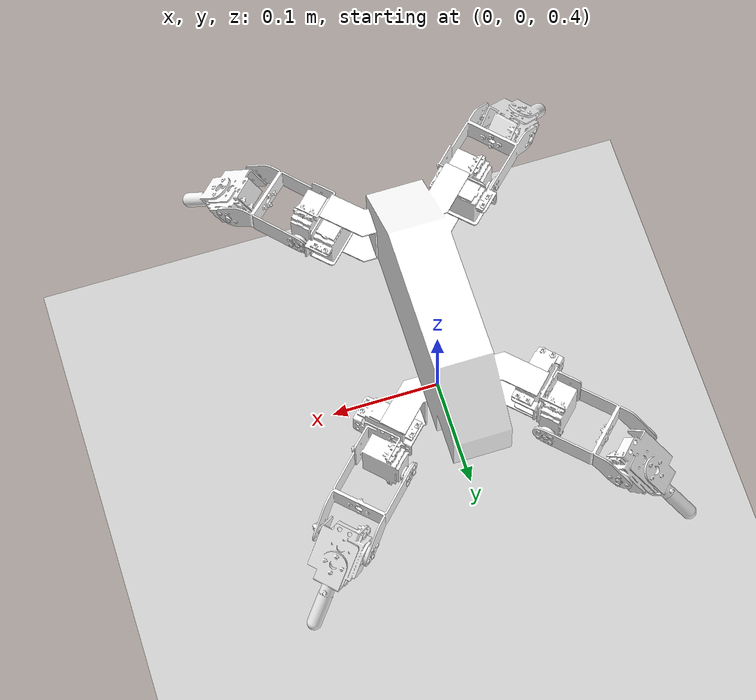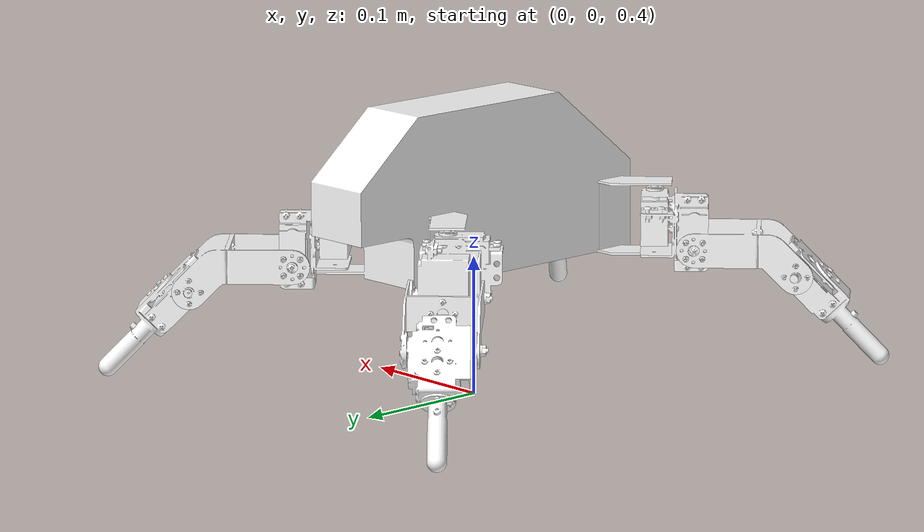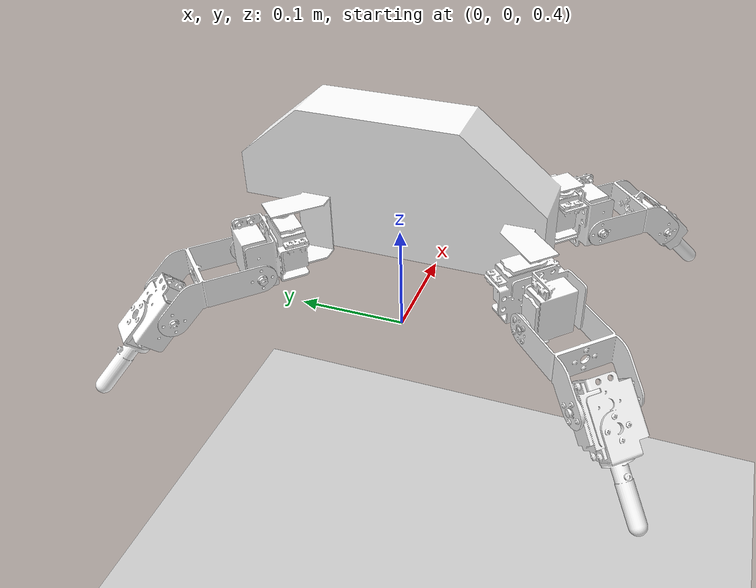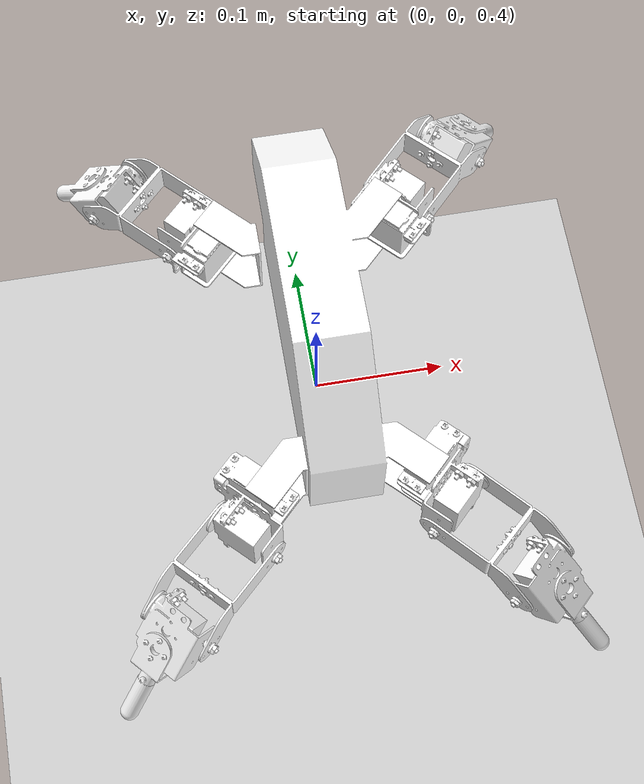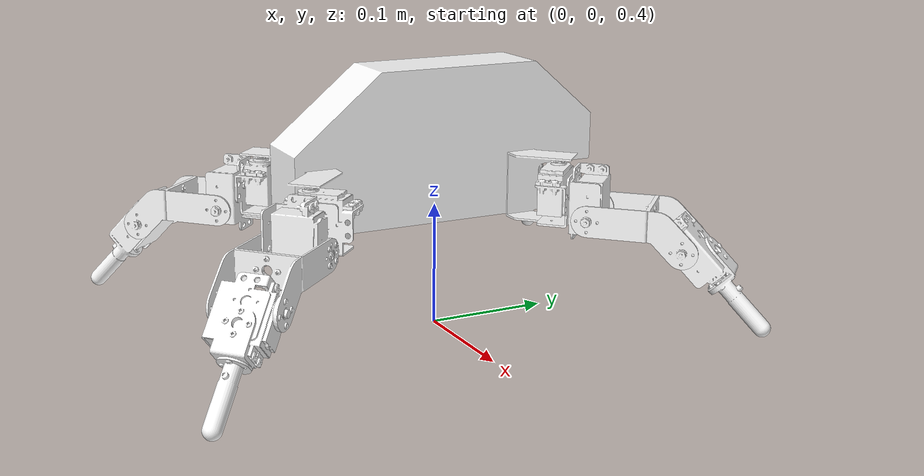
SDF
<sdf version="1.8">
 <world name="friction_world">
  <physics name="1ms" type="ignored">
   <max_step_size>0.001</max_step_size>
   <real_time_factor>1.0</real_time_factor>
  </physics>
  <plugin filename="gz-sim-physics-system" name="gz::sim::systems::Physics"/>
  <plugin filename="gz-sim-sensors-system" name="gz::sim::systems::Sensors">
   <render_engine>ogre2</render_engine>
  </plugin>
  <plugin filename="gz-sim-user-commands-system" name="gz::sim::systems::UserCommands"/>
  <plugin filename="gz-sim-scene-broadcaster-system" name="gz::sim::systems::SceneBroadcaster"/>
  <light type="directional" name="sun">
   <pose>0 0 10 0 0 0</pose>
   <diffuse>0.8 0.8 0.8 1</diffuse>
   <specular>0.2 0.2 0.2 1</specular>
   <direction>-0.5 0.1 -0.9</direction>
  </light>
  <model name="ground_plane">
   <static>true</static>
   <link name="link">
    <collision name="collision">
     <geometry><plane><normal>0 0 1</normal><size>100 100</size></plane></geometry>
     <surface><friction><ode><mu>0.7</mu><mu2>0.7</mu2></ode></friction></surface>
    </collision>
    <visual name="visual">
     <geometry><plane><normal>0 0 1</normal><size>100 100</size></plane></geometry>
     <material><ambient>0.8 0.8 0.8 1</ambient><diffuse>0.8 0.8 0.8 1</diffuse></material>
    </visual>
   </link>
  </model>
  <include>
   <uri>model://THex_Quadruped</uri>
   <name>THex_Quadruped</name>
   <pose>0 0 0.5 0 0 0</pose>
   <plugin filename="gz-sim-joint-state-publisher-system" name="gz::sim::systems::JointStatePublisher"/>
  </include>
 </world>
</sdf>

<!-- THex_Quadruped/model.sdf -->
<sdf version='1.11'>
  <model name='THex_Quadruped'>
  <self_collide>true</self_collide>
    <link name='base_link'>
      <inertial>
        <pose>0.00018 -0.00861 0.03579 0 0 0</pose>
        <mass>0.30423</mass>
        <inertia>
          <ixx>0.00232</ixx>
          <ixy>0</ixy>
          <ixz>0</ixz>
          <iyy>0.00064</iyy>
          <iyz>0.00008</iyz>
          <izz>0.00225</izz>
        </inertia>
      </inertial>
      <collision name='base_link_collision'>
        <pose>0 0 0 0 0 0</pose>
        <geometry>
          <mesh>
            <scale>1 1 1</scale>
            <uri>model://THex_Quadruped/meshes/base_link_collision.STL</uri>
          </mesh>
        </geometry>
      </collision>
      <visual name='base_link_visual'>
        <pose>0 0 0 0 0 0</pose>
        <geometry>
          <mesh>
            <scale>1 1 1</scale>
            <uri>model://THex_Quadruped/meshes/base_link.STL</uri>
          </mesh>
        </geometry>
        <material>
          <diffuse>1 1 1 1</diffuse>
          <ambient>1 1 1 1</ambient>
        </material>
      </visual>
    </link>
    <joint name='bl_hip_joint' type='revolute'>
      <pose relative_to='base_link'>-0.053156000000000002 -0.12709000000000001 0 0 0 -2.3570000000000002</pose>
      <parent>base_link</parent>
      <child>bl_hip</child>
      <axis>
        <xyz>0 0 1</xyz>
        <limit>
          <lower>-0.7853</lower>
          <upper>0.7853</upper>
          <effort>0.9414</effort>
          <velocity>5.23</velocity>
        </limit>
        <dynamics>
          <spring_reference>0</spring_reference>
          <spring_stiffness>0</spring_stiffness>
        </dynamics>
      </axis>
      <physics>
        <provide_feedback>true</provide_feedback>
      </physics>
      <sensor name="force_torque_sensor" type="force_torque">
        <update_rate>100</update_rate>
        <always_on>true</always_on>
        <visualize>true</visualize>
        <topic>bl_hip_force_torque</topic>
        <force_torque>
          <frame>sensor</frame>
          <measure_direction>parent_to_child</measure_direction>
        </force_torque>
      </sensor>
    </joint>
    <link name='bl_hip'>
      <pose relative_to='bl_hip_joint'>0 0 0 0 0 0</pose>
      <inertial>
        <pose>0.01464 -0.00468 0.01291 0 0 0</pose>
        <mass>0.14763</mass>
        <inertia>
          <ixx>0.00005</ixx>
          <ixy>0.00001</ixy>
          <ixz>-0.00001</ixz>
          <iyy>0.00005</iyy>
          <iyz>0</iyz>
          <izz>0.00006</izz>
        </inertia>
      </inertial>
      <collision name='bl_hip_collision'>
        <pose>0 0 0 0 0 0</pose>
        <geometry>
          <mesh>
            <scale>1 1 1</scale>
            <uri>model://THex_Quadruped/meshes/bl_hip_collision.STL</uri>
          </mesh>
        </geometry>
      </collision>
      <visual name='bl_hip_visual'>
        <pose>0 0 0 0 0 0</pose>
        <geometry>
          <mesh>
            <scale>1 1 1</scale>
            <uri>model://THex_Quadruped/meshes/bl_hip.STL</uri>
          </mesh>
        </geometry>
        <material>
          <diffuse>1 1 1 1</diffuse>
          <ambient>1 1 1 1</ambient>
        </material>
      </visual>
    </link>
    <joint name='bl_knee_joint' type='revolute'>
      <pose relative_to='bl_hip'>0.028468 0 0 -1.5707 0 -0.071951000000000015</pose>
      <parent>bl_hip</parent>
      <child>bl_knee</child>
      <axis>
        <xyz>0 0 1</xyz>
        <limit>
          <lower>-1.5707</lower>
          <upper>1.5707</upper>
          <effort>0.9414</effort>
          <velocity>5.23</velocity>
        </limit>
        <dynamics>
          <spring_reference>0</spring_reference>
          <spring_stiffness>0</spring_stiffness>
        </dynamics>
      </axis>
      <physics>
        <provide_feedback>true</provide_feedback>
      </physics>
      <sensor name="force_torque_sensor" type="force_torque">
        <update_rate>100</update_rate>
        <always_on>true</always_on>
        <visualize>true</visualize>
        <topic>bl_knee_force_torque</topic>
        <force_torque>
          <frame>sensor</frame>
          <measure_direction>parent_to_child</measure_direction>
        </force_torque>
      </sensor>
    </joint>
    <link name='bl_knee'>
      <pose relative_to='bl_knee_joint'>0 0 0 0 0 0</pose>
      <inertial>
        <pose>0.04532 0.00448 0.00015 0 0 0</pose>
        <mass>0.03468</mass>
        <inertia>
          <ixx>0.00002</ixx>
          <ixy>0</ixy>
          <ixz>0</ixz>
          <iyy>0.00003</iyy>
          <iyz>0</iyz>
          <izz>0.00002</izz>
        </inertia>
      </inertial>
      <collision name='bl_knee_collision'>
        <pose>0 0 0 0 0 0</pose>
        <geometry>
          <mesh>
            <scale>1 1 1</scale>
            <uri>model://THex_Quadruped/meshes/bl_knee_collision.STL</uri>
          </mesh>
        </geometry>
      </collision>
      <visual name='bl_knee_visual'>
        <pose>0 0 0 0 0 0</pose>
        <geometry>
          <mesh>
            <scale>1 1 1</scale>
            <uri>model://THex_Quadruped/meshes/bl_knee.STL</uri>
          </mesh>
        </geometry>
        <material>
          <diffuse>1 1 1 1</diffuse>
          <ambient>1 1 1 1</ambient>
        </material>
      </visual>
    </link>
    <joint name='bl_foot_joint' type='revolute'>
      <pose relative_to='bl_knee'>0.072935 0.018648999999999999 0 3.1415 0 0.7853</pose>
      <parent>bl_knee</parent>
      <child>bl_foot</child>
      <axis>
        <xyz>0 0 1</xyz>
        <limit>
          <lower>-1.5707</lower>
          <upper>1.5707</upper>
          <effort>0.9414</effort>
          <velocity>5.23</velocity>
        </limit>
        <dynamics>
          <spring_reference>0</spring_reference>
          <spring_stiffness>0</spring_stiffness>
        </dynamics>
      </axis>
      <physics>
        <provide_feedback>true</provide_feedback>
      </physics>
      <sensor name="force_torque_sensor" type="force_torque">
        <update_rate>100</update_rate>
        <always_on>true</always_on>
        <visualize>true</visualize>
        <topic>bl_foot_force_torque</topic>
        <force_torque>
          <frame>sensor</frame>
          <measure_direction>parent_to_child</measure_direction>
        </force_torque>
      </sensor>
    </joint>
    <link name='bl_foot'>
      <pose relative_to='bl_foot_joint'>0 0 0 0 0 0</pose>
      <inertial>
        <pose>0.01684 0.00222 0.00042 0 0 0</pose>
        <mass>0.09125</mass>
        <inertia>
          <ixx>0.00001</ixx>
          <ixy>0</ixy>
          <ixz>0</ixz>
          <iyy>0.00004</iyy>
          <iyz>0</iyz>
          <izz>0.00004</izz>
        </inertia>
      </inertial>
      <collision name='bl_foot_collision'>
        <pose>0 0 0 0 0 0</pose>
        <geometry>
          <mesh>
            <scale>1 1 1</scale>
            <uri>model://THex_Quadruped/meshes/bl_foot_collision.STL</uri>
          </mesh>
        </geometry>
      </collision>
      <visual name='bl_foot_visual'>
        <pose>0 0 0 0 0 0</pose>
        <geometry>
          <mesh>
            <scale>1 1 1</scale>
            <uri>model://THex_Quadruped/meshes/bl_foot.STL</uri>
          </mesh>
        </geometry>
        <material>
          <diffuse>1 1 1 1</diffuse>
          <ambient>1 1 1 1</ambient>
        </material>
      </visual>
    </link>
    <joint name='br_hip_joint' type='revolute'>
      <pose relative_to='base_link'>0.053156000000000002 -0.12709000000000001 0 0 0 -0.78456000000000026</pose>
      <parent>base_link</parent>
      <child>br_hip</child>
      <axis>
        <xyz>0 0 1</xyz>
        <limit>
          <lower>-0.7853</lower>
          <upper>0.7853</upper>
          <effort>0.9414</effort>
          <velocity>5.23</velocity>
        </limit>
        <dynamics>
          <spring_reference>0</spring_reference>
          <spring_stiffness>0</spring_stiffness>
        </dynamics>
      </axis>
      <physics>
        <provide_feedback>true</provide_feedback>
      </physics>
      <sensor name="force_torque_sensor" type="force_torque">
        <update_rate>100</update_rate>
        <always_on>true</always_on>
        <visualize>true</visualize>
        <topic>br_hip_force_torque</topic>
        <force_torque>
          <frame>sensor</frame>
          <measure_direction>parent_to_child</measure_direction>
        </force_torque>
      </sensor>
    </joint>
    <link name='br_hip'>
      <pose relative_to='br_hip_joint'>0 0 0 0 0 0</pose>
      <inertial>
        <pose>0.01464 0.00436 0.01261 0 0 0</pose>
        <mass>0.14763</mass>
        <inertia>
          <ixx>0.00005</ixx>
          <ixy>-0.00001</ixy>
          <ixz>-0.00001</ixz>
          <iyy>0.00005</iyy>
          <iyz>0</iyz>
          <izz>0.00006</izz>
        </inertia>
      </inertial>
      <collision name='br_hip_collision'>
        <pose>0 0 0 0 0 0</pose>
        <geometry>
          <mesh>
            <scale>1 1 1</scale>
            <uri>model://THex_Quadruped/meshes/br_hip_collision.STL</uri>
          </mesh>
        </geometry>
      </collision>
      <visual name='br_hip_visual'>
        <pose>0 0 0 0 0 0</pose>
        <geometry>
          <mesh>
            <scale>1 1 1</scale>
            <uri>model://THex_Quadruped/meshes/br_hip.STL</uri>
          </mesh>
        </geometry>
        <material>
          <diffuse>1 1 1 1</diffuse>
          <ambient>1 1 1 1</ambient>
        </material>
      </visual>
    </link>
    <joint name='br_knee_joint' type='revolute'>
      <pose relative_to='br_hip'>0.028468 0 0 1.5707 0 0</pose>
      <parent>br_hip</parent>
      <child>br_knee</child>
      <axis>
        <xyz>0 0 1</xyz>
        <limit>
          <lower>-1.5707</lower>
          <upper>1.5707</upper>
          <effort>0.9414</effort>
          <velocity>5.23</velocity>
        </limit>
        <dynamics>
          <spring_reference>0</spring_reference>
          <spring_stiffness>0</spring_stiffness>
        </dynamics>
      </axis>
      <physics>
        <provide_feedback>true</provide_feedback>
      </physics>
      <sensor name="force_torque_sensor" type="force_torque">
        <update_rate>100</update_rate>
        <always_on>true</always_on>
        <visualize>true</visualize>
        <topic>br_knee_force_torque</topic>
        <force_torque>
          <frame>sensor</frame>
          <measure_direction>parent_to_child</measure_direction>
        </force_torque>
      </sensor>
    </joint>
    <link name='br_knee'>
      <pose relative_to='br_knee_joint'>0 0 0 0 0 0</pose>
      <inertial>
        <pose>0.04530 -0.00448 0.00016 0 0 0</pose>
        <mass>0.03468</mass>
        <inertia>
          <ixx>0.00002</ixx>
          <ixy>0</ixy>
          <ixz>0</ixz>
          <iyy>0.00003</iyy>
          <iyz>0</iyz>
          <izz>0.00002</izz>
        </inertia>
      </inertial>
      <collision name='br_knee_collision'>
        <pose>0 0 0 0 0 0</pose>
        <geometry>
          <mesh>
            <scale>1 1 1</scale>
            <uri>model://THex_Quadruped/meshes/br_knee_collision.STL</uri>
          </mesh>
        </geometry>
      </collision>
      <visual name='br_knee_visual'>
        <pose>0 0 0 0 0 0</pose>
        <geometry>
          <mesh>
            <scale>1 1 1</scale>
            <uri>model://THex_Quadruped/meshes/br_knee.STL</uri>
          </mesh>
        </geometry>
        <material>
          <diffuse>1 1 1 1</diffuse>
          <ambient>1 1 1 1</ambient>
        </material>
      </visual>
    </link>
    <joint name='br_foot_joint' type='revolute'>
      <pose relative_to='br_knee'>0.072955999999999993 -0.018648999999999999 0 -3.1415 0 -0.7853</pose>
      <parent>br_knee</parent>
      <child>br_foot</child>
      <axis>
        <xyz>0 0 1</xyz>
        <limit>
          <lower>-1.5707</lower>
          <upper>1.5707</upper>
          <effort>0.9414</effort>
          <velocity>5.23</velocity>
        </limit>
        <dynamics>
          <spring_reference>0</spring_reference>
          <spring_stiffness>0</spring_stiffness>
        </dynamics>
      </axis>
      <physics>
        <provide_feedback>true</provide_feedback>
      </physics>
      <sensor name="force_torque_sensor" type="force_torque">
        <update_rate>100</update_rate>
        <always_on>true</always_on>
        <visualize>true</visualize>
        <topic>br_foot_force_torque</topic>
        <force_torque>
          <frame>sensor</frame>
          <measure_direction>parent_to_child</measure_direction>
        </force_torque>
      </sensor>
    </joint>
    <link name='br_foot'>
      <pose relative_to='br_foot_joint'>0 0 0 0 0 0</pose>
      <inertial>
        <pose>0.01666 -0.00222 0.00043 0 0 0</pose>
        <mass>0.09125</mass>
        <inertia>
          <ixx>0.00001</ixx>
          <ixy>0</ixy>
          <ixz>0</ixz>
          <iyy>0.00004</iyy>
          <iyz>0</iyz>
          <izz>0.00004</izz>
        </inertia>
      </inertial>
      <collision name='br_foot_collision'>
        <pose>0 0 0 0 0 0</pose>
        <geometry>
          <mesh>
            <scale>1 1 1</scale>
            <uri>model://THex_Quadruped/meshes/br_foot_collision.STL</uri>
          </mesh>
        </geometry>
      </collision>
      <visual name='br_foot_visual'>
        <pose>0 0 0 0 0 0</pose>
        <geometry>
          <mesh>
            <scale>1 1 1</scale>
            <uri>model://THex_Quadruped/meshes/br_foot.STL</uri>
          </mesh>
        </geometry>
        <material>
          <diffuse>1 1 1 1</diffuse>
          <ambient>1 1 1 1</ambient>
        </material>
      </visual>
    </link>
    <joint name='fl_hip_joint' type='revolute'>
      <pose relative_to='base_link'>-0.059506000000000003 0.078833 0 0 0 2.3570000000000002</pose>
      <parent>base_link</parent>
      <child>fl_hip</child>
      <axis>
        <xyz>0 0 1</xyz>
        <limit>
          <lower>-0.7853</lower>
          <upper>0.7853</upper>
          <effort>0.9414</effort>
          <velocity>5.23</velocity>
        </limit>
        <dynamics>
          <spring_reference>0</spring_reference>
          <spring_stiffness>0</spring_stiffness>
        </dynamics>
      </axis>
      <physics>
        <provide_feedback>true</provide_feedback>
      </physics>
      <sensor name="force_torque_sensor" type="force_torque">
        <update_rate>100</update_rate>
        <always_on>true</always_on>
        <visualize>true</visualize>
        <topic>fl_hip_force_torque</topic>
        <force_torque>
          <frame>sensor</frame>
          <measure_direction>parent_to_child</measure_direction>
        </force_torque>
      </sensor>
    </joint>
    <link name='fl_hip'>
      <pose relative_to='fl_hip_joint'>0 0 0 0 0 0</pose>
      <inertial>
        <pose>0.01464 0.00557 0.01291 0 0 0</pose>
        <mass>0.14763</mass>
        <inertia>
          <ixx>0.00005</ixx>
          <ixy>-0.00001</ixy>
          <ixz>-0.00001</ixz>
          <iyy>0.00005</iyy>
          <iyz>0</iyz>
          <izz>0.00006</izz>
        </inertia>
      </inertial>
      <collision name='fl_hip_collision'>
        <pose>0 0 0 0 0 0</pose>
        <geometry>
          <mesh>
            <scale>1 1 1</scale>
            <uri>model://THex_Quadruped/meshes/fl_hip_collision.STL</uri>
          </mesh>
        </geometry>
      </collision>
      <visual name='fl_hip_visual'>
        <pose>0 0 0 0 0 0</pose>
        <geometry>
          <mesh>
            <scale>1 1 1</scale>
            <uri>model://THex_Quadruped/meshes/fl_hip.STL</uri>
          </mesh>
        </geometry>
        <material>
          <diffuse>1 1 1 1</diffuse>
          <ambient>1 1 1 1</ambient>
        </material>
      </visual>
    </link>
    <joint name='fl_knee_joint' type='revolute'>
      <pose relative_to='fl_hip'>0.028468 0 0 -1.5707 0 0</pose>
      <parent>fl_hip</parent>
      <child>fl_knee</child>
      <axis>
        <xyz>0 0 1</xyz>
        <limit>
          <lower>-1.5707</lower>
          <upper>1.5707</upper>
          <effort>0.9414</effort>
          <velocity>5.23</velocity>
        </limit>
        <dynamics>
          <spring_reference>0</spring_reference>
          <spring_stiffness>0</spring_stiffness>
        </dynamics>
      </axis>
      <physics>
        <provide_feedback>true</provide_feedback>
      </physics>
      <sensor name="force_torque_sensor" type="force_torque">
        <update_rate>100</update_rate>
        <always_on>true</always_on>
        <visualize>true</visualize>
        <topic>fl_knee_force_torque</topic>
        <force_torque>
          <frame>sensor</frame>
          <measure_direction>parent_to_child</measure_direction>
        </force_torque>
      </sensor>
    </joint>
    <link name='fl_knee'>
      <pose relative_to='fl_knee_joint'>0 0 0 0 0 0</pose>
      <inertial>
        <pose>0.04527 0.00448 0.00019 0 0 0</pose>
        <mass>0.03468</mass>
        <inertia>
          <ixx>0.00002</ixx>
          <ixy>0</ixy>
          <ixz>0</ixz>
          <iyy>0.00003</iyy>
          <iyz>0</iyz>
          <izz>0.00002</izz>
        </inertia>
      </inertial>
      <collision name='fl_knee_collision'>
        <pose>0 0 0 0 0 0</pose>
        <geometry>
          <mesh>
            <scale>1 1 1</scale>
            <uri>model://THex_Quadruped/meshes/fl_knee_collision.STL</uri>
          </mesh>
        </geometry>
      </collision>
      <visual name='fl_knee_visual'>
        <pose>0 0 0 0 0 0</pose>
        <geometry>
          <mesh>
            <scale>1 1 1</scale>
            <uri>model://THex_Quadruped/meshes/fl_knee.STL</uri>
          </mesh>
        </geometry>
        <material>
          <diffuse>1 1 1 1</diffuse>
          <ambient>1 1 1 1</ambient>
        </material>
      </visual>
    </link>
    <joint name='fl_foot_joint' type='revolute'>
      <pose relative_to='fl_knee'>0.073042999999999997 0.018648999999999999 0 3.1415 0 0.7853</pose>
      <parent>fl_knee</parent>
      <child>fl_foot</child>
      <axis>
        <xyz>0 0 1</xyz>
        <limit>
          <lower>-1.5707</lower>
          <upper>1.5707</upper>
          <effort>0.9414</effort>
          <velocity>5.23</velocity>
        </limit>
        <dynamics>
          <spring_reference>0</spring_reference>
          <spring_stiffness>0</spring_stiffness>
        </dynamics>
      </axis>
      <physics>
        <provide_feedback>true</provide_feedback>
      </physics>
      <sensor name="force_torque_sensor" type="force_torque">
        <update_rate>100</update_rate>
        <always_on>true</always_on>
        <visualize>true</visualize>
        <topic>fl_foot_force_torque</topic>
        <force_torque>
          <frame>sensor</frame>
          <measure_direction>parent_to_child</measure_direction>
        </force_torque>
      </sensor>
    </joint>
    <link name='fl_foot'>
      <pose relative_to='fl_foot_joint'>0 0 0 0 0 0</pose>
      <inertial>
        <pose>0.01684 0.00222 0.00042 0 0 0</pose>
        <mass>0.09125</mass>
        <inertia>
          <ixx>0.00001</ixx>
          <ixy>0</ixy>
          <ixz>0</ixz>
          <iyy>0.00004</iyy>
          <iyz>0</iyz>
          <izz>0.00004</izz>
        </inertia>
      </inertial>
      <collision name='fl_foot_collision'>
        <pose>0 0 0 0 0 0</pose>
        <geometry>
          <mesh>
            <scale>1 1 1</scale>
            <uri>model://THex_Quadruped/meshes/fl_foot_collision.STL</uri>
          </mesh>
        </geometry>
      </collision>
      <visual name='fl_foot_visual'>
        <pose>0 0 0 0 0 0</pose>
        <geometry>
          <mesh>
            <scale>1 1 1</scale>
            <uri>model://THex_Quadruped/meshes/fl_foot.STL</uri>
          </mesh>
        </geometry>
        <material>
          <diffuse>1 1 1 1</diffuse>
          <ambient>1 1 1 1</ambient>
        </material>
      </visual>
    </link>
    <joint name='fr_hip_joint' type='revolute'>
      <pose relative_to='base_link'>0.059506000000000003 0.078833 0 0 0 0.78456000000000026</pose>
      <parent>base_link</parent>
      <child>fr_hip</child>
      <axis>
        <xyz>0 0 1</xyz>
        <limit>
          <lower>-0.7853</lower>
          <upper>0.7853</upper>
          <effort>0.9414</effort>
          <velocity>5.23</velocity>
        </limit>
        <dynamics>
          <spring_reference>0</spring_reference>
          <spring_stiffness>0</spring_stiffness>
        </dynamics>
      </axis>
      <physics>
        <provide_feedback>true</provide_feedback>
      </physics>
      <sensor name="force_torque_sensor" type="force_torque">
        <update_rate>100</update_rate>
        <always_on>true</always_on>
        <visualize>true</visualize>
        <topic>fr_hip_force_torque</topic>
        <force_torque>
          <frame>sensor</frame>
          <measure_direction>parent_to_child</measure_direction>
        </force_torque>
      </sensor>
    </joint>
    <link name='fr_hip'>
      <pose relative_to='fr_hip_joint'>0 0 0 0 0 0</pose>
      <inertial>
        <pose>0.01464 -0.00588 0.01261 0 0 0</pose>
        <mass>0.14763</mass>
        <inertia>
          <ixx>0.00005</ixx>
          <ixy>0.00001</ixy>
          <ixz>-0.00001</ixz>
          <iyy>0.00005</iyy>
          <iyz>0</iyz>
          <izz>0.00006</izz>
        </inertia>
      </inertial>
      <collision name='fr_hip_collision'>
        <pose>0 0 0 0 0 0</pose>
        <geometry>
          <mesh>
            <scale>1 1 1</scale>
            <uri>model://THex_Quadruped/meshes/fr_hip_collision.STL</uri>
          </mesh>
        </geometry>
      </collision>
      <visual name='fr_hip_visual'>
        <pose>0 0 0 0 0 0</pose>
        <geometry>
          <mesh>
            <scale>1 1 1</scale>
            <uri>model://THex_Quadruped/meshes/fr_hip.STL</uri>
          </mesh>
        </geometry>
        <material>
          <diffuse>1 1 1 1</diffuse>
          <ambient>1 1 1 1</ambient>
        </material>
      </visual>
    </link>
    <joint name='fr_knee_joint' type='revolute'>
      <pose relative_to='fr_hip'>0.028468 0 0 1.5707 0 0</pose>
      <parent>fr_hip</parent>
      <child>fr_knee</child>
      <axis>
        <xyz>0 0 1</xyz>
        <limit>
          <lower>-1.5707</lower>
          <upper>1.5707</upper>
          <effort>0.9414</effort>
          <velocity>5.23</velocity>
        </limit>
        <dynamics>
          <spring_reference>0</spring_reference>
          <spring_stiffness>0</spring_stiffness>
        </dynamics>
      </axis>
      <physics>
        <provide_feedback>true</provide_feedback>
      </physics>
      <sensor name="force_torque_sensor" type="force_torque">
        <update_rate>100</update_rate>
        <always_on>true</always_on>
        <visualize>true</visualize>
        <topic>fr_knee_force_torque</topic>
        <force_torque>
          <frame>sensor</frame>
          <measure_direction>parent_to_child</measure_direction>
        </force_torque>
      </sensor>
    </joint>
    <link name='fr_knee'>
      <pose relative_to='fr_knee_joint'>0 0 0 0 0 0</pose>
      <inertial>
        <pose>0.04528 -0.00448 0.00020 0 0 0</pose>
        <mass>0.03468</mass>
        <inertia>
          <ixx>0.00002</ixx>
          <ixy>0</ixy>
          <ixz>0</ixz>
          <iyy>0.00003</iyy>
          <iyz>0</iyz>
          <izz>0.00002</izz>
        </inertia>
      </inertial>
      <collision name='fr_knee_collision'>
        <pose>0 0 0 0 0 0</pose>
        <geometry>
          <mesh>
            <scale>1 1 1</scale>
            <uri>model://THex_Quadruped/meshes/fr_knee_collision.STL</uri>
          </mesh>
        </geometry>
      </collision>
      <visual name='fr_knee_visual'>
        <pose>0 0 0 0 0 0</pose>
        <geometry>
          <mesh>
            <scale>1 1 1</scale>
            <uri>model://THex_Quadruped/meshes/fr_knee.STL</uri>
          </mesh>
        </geometry>
        <material>
          <diffuse>1 1 1 1</diffuse>
          <ambient>1 1 1 1</ambient>
        </material>
      </visual>
    </link>
    <joint name='fr_foot_joint' type='revolute'>
      <pose relative_to='fr_knee'>0.073075000000000001 -0.018648999999999999 0 3.1415 0 -0.7853</pose>
      <parent>fr_knee</parent>
      <child>fr_foot</child>
      <axis>
        <xyz>0 0 1</xyz>
        <limit>
          <lower>-1.5707</lower>
          <upper>1.5707</upper>
          <effort>0.9414</effort>
          <velocity>5.23</velocity>
        </limit>
        <dynamics>
          <spring_reference>0</spring_reference>
          <spring_stiffness>0</spring_stiffness>
        </dynamics>
      </axis>
      <physics>
        <provide_feedback>true</provide_feedback>
      </physics>
      <sensor name="force_torque_sensor" type="force_torque">
        <update_rate>100</update_rate>
        <always_on>true</always_on>
        <visualize>true</visualize>
        <topic>fr_foot_force_torque</topic>
        <force_torque>
          <frame>sensor</frame>
          <measure_direction>parent_to_child</measure_direction>
        </force_torque>
      </sensor>
    </joint>
    <link name='fr_foot'>
      <pose relative_to='fr_foot_joint'>0 0 0 0 0 0</pose>
      <inertial>
        <pose>0.01666 -0.00222 0.00043 0 0 0</pose>
        <mass>0.09125</mass>
        <inertia>
          <ixx>0.00001</ixx>
          <ixy>0</ixy>
          <ixz>0</ixz>
          <iyy>0.00004</iyy>
          <iyz>0</iyz>
          <izz>0.00004</izz>
        </inertia>
      </inertial>
      <collision name='fr_foot_collision'>
        <pose>0 0 0 0 0 0</pose>
        <geometry>
          <mesh>
            <scale>1 1 1</scale>
            <uri>model://THex_Quadruped/meshes/fr_foot_collision.STL</uri>
          </mesh>
        </geometry>
      </collision>
      <visual name='fr_foot_visual'>
        <pose>0 0 0 0 0 0</pose>
        <geometry>
          <mesh>
            <scale>1 1 1</scale>
            <uri>model://THex_Quadruped/meshes/fr_foot.STL</uri>
          </mesh>
        </geometry>
        <material>
          <diffuse>1 1 1 1</diffuse>
          <ambient>1 1 1 1</ambient>
        </material>
      </visual>
    </link>
    <plugin name="gz::sim::systems::JointPositionController" filename="libgz-sim-joint-position-controller-system.so">
  	<joint_name>fr_hip_joint</joint_name>
    <use_velocity_commands>false</use_velocity_commands>
    <p_gain>5</p_gain>
    <i_gain>0.1</i_gain>
    <d_gain>0.1</d_gain>
    </plugin>
    <plugin name="gz::sim::systems::JointPositionController" filename="libgz-sim-joint-position-controller-system.so">
  	<joint_name>fr_knee_joint</joint_name>
    <use_velocity_commands>false</use_velocity_commands>
    <p_gain>5</p_gain>
    <i_gain>0.1</i_gain>
    <d_gain>0.1</d_gain>
    </plugin>
    <plugin name="gz::sim::systems::JointPositionController" filename="libgz-sim-joint-position-controller-system.so">
  	<joint_name>fr_foot_joint</joint_name>
    <use_velocity_commands>false</use_velocity_commands>
    <p_gain>5</p_gain>
    <i_gain>0.1</i_gain>
    <d_gain>0.1</d_gain>
    </plugin>
    <plugin name="gz::sim::systems::JointPositionController" filename="libgz-sim-joint-position-controller-system.so">
  	<joint_name>fl_hip_joint</joint_name>
    <use_velocity_commands>false</use_velocity_commands>
    <p_gain>5</p_gain>
    <i_gain>0.1</i_gain>
    <d_gain>0.1</d_gain>
    </plugin>
    <plugin name="gz::sim::systems::JointPositionController" filename="libgz-sim-joint-position-controller-system.so">
  	<joint_name>fl_knee_joint</joint_name>
    <use_velocity_commands>false</use_velocity_commands>
    <p_gain>5</p_gain>
    <i_gain>0.1</i_gain>
    <d_gain>0.1</d_gain>
    </plugin>
    <plugin name="gz::sim::systems::JointPositionController" filename="libgz-sim-joint-position-controller-system.so">
  	<joint_name>fl_foot_joint</joint_name>
    <use_velocity_commands>false</use_velocity_commands>
    <p_gain>5</p_gain>
    <i_gain>0.1</i_gain>
    <d_gain>0.1</d_gain>
    </plugin>
    <plugin name="gz::sim::systems::JointPositionController" filename="libgz-sim-joint-position-controller-system.so">
  	<joint_name>bl_hip_joint</joint_name>
    <use_velocity_commands>false</use_velocity_commands>
    <p_gain>5</p_gain>
    <i_gain>0.1</i_gain>
    <d_gain>0.1</d_gain>
    </plugin>
    <plugin name="gz::sim::systems::JointPositionController" filename="libgz-sim-joint-position-controller-system.so">
  	<joint_name>bl_knee_joint</joint_name>
    <use_velocity_commands>false</use_velocity_commands>
    <p_gain>5</p_gain>
    <i_gain>0.1</i_gain>
    <d_gain>0.1</d_gain>
    </plugin>
    <plugin name="gz::sim::systems::JointPositionController" filename="libgz-sim-joint-position-controller-system.so">
  	<joint_name>bl_foot_joint</joint_name>
    <use_velocity_commands>false</use_velocity_commands>
    <p_gain>5</p_gain>
    <i_gain>0.1</i_gain>
    <d_gain>0.1</d_gain>
    </plugin>
    <plugin name="gz::sim::systems::JointPositionController" filename="libgz-sim-joint-position-controller-system.so">
  	<joint_name>br_hip_joint</joint_name>
    <use_velocity_commands>false</use_velocity_commands>
    <p_gain>5</p_gain>
    <i_gain>0.1</i_gain>
    <d_gain>0.1</d_gain>
    </plugin>
    <plugin name="gz::sim::systems::JointPositionController" filename="libgz-sim-joint-position-controller-system.so">
  	<joint_name>br_knee_joint</joint_name>
    <use_velocity_commands>false</use_velocity_commands>
    <p_gain>5</p_gain>
    <i_gain>0.1</i_gain>
    <d_gain>0.1</d_gain>
    </plugin>
    <plugin name="gz::sim::systems::JointPositionController" filename="libgz-sim-joint-position-controller-system.so">
  	<joint_name>br_foot_joint</joint_name>
    <use_velocity_commands>false</use_velocity_commands>
    <p_gain>5</p_gain>
    <i_gain>0.1</i_gain>
    <d_gain>0.1</d_gain>
    </plugin>
    <plugin
    filename="gz-sim-joint-state-publisher-system"
    name="gz::sim::systems::JointStatePublisher">
    <joint_name>fr_hip_joint</joint_name>
    </plugin>
    <plugin
    filename="gz-sim-joint-state-publisher-system"
    name="gz::sim::systems::JointStatePublisher">
    <joint_name>fr_knee_joint</joint_name>
    </plugin>
    <plugin
    filename="gz-sim-joint-state-publisher-system"
    name="gz::sim::systems::JointStatePublisher">
    <joint_name>fr_foot_joint</joint_name>
    </plugin>
    <plugin
    filename="gz-sim-joint-state-publisher-system"
    name="gz::sim::systems::JointStatePublisher">
    <joint_name>br_hip_joint</joint_name>
    </plugin>
    <plugin
    filename="gz-sim-joint-state-publisher-system"
    name="gz::sim::systems::JointStatePublisher">
    <joint_name>br_knee_joint</joint_name>
    </plugin>
    <plugin
    filename="gz-sim-joint-state-publisher-system"
    name="gz::sim::systems::JointStatePublisher">
    <joint_name>br_foot_joint</joint_name>
    </plugin>
    <plugin
    filename="gz-sim-joint-state-publisher-system"
    name="gz::sim::systems::JointStatePublisher">
    <joint_name>bl_hip_joint</joint_name>
    </plugin>
    <plugin
    filename="gz-sim-joint-state-publisher-system"
    name="gz::sim::systems::JointStatePublisher">
    <joint_name>bl_knee_joint</joint_name>
    </plugin>
    <plugin
    filename="gz-sim-joint-state-publisher-system"
    name="gz::sim::systems::JointStatePublisher">
    <joint_name>bl_foot_joint</joint_name>
    </plugin>
    <plugin
    filename="gz-sim-joint-state-publisher-system"
    name="gz::sim::systems::JointStatePublisher">
    <joint_name>fl_hip_joint</joint_name>
    </plugin>
    <plugin
    filename="gz-sim-joint-state-publisher-system"
    name="gz::sim::systems::JointStatePublisher">
    <joint_name>fl_knee_joint</joint_name>
    </plugin>
    <plugin
    filename="gz-sim-joint-state-publisher-system"
    name="gz::sim::systems::JointStatePublisher">
    <joint_name>fl_foot_joint</joint_name>
    </plugin>
  </model>
</sdf>
